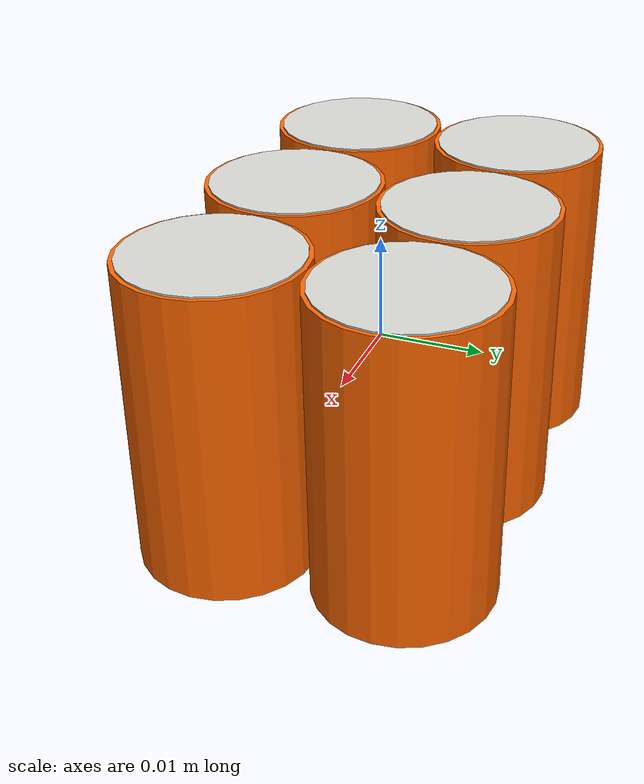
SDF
<?xml version="1.0"?>
<sdf version="1.8">
  <model name="fanta_6pack">
    <static>false</static>
    <link name="link">
      <inertial>
        <mass>0.2</mass>
        <inertia>
          <ixx>0.000032</ixx>
          <iyy>0.000056</iyy>
          <izz>0.000060</izz>
          <ixy>0</ixy>
          <ixz>0</ixz>
          <iyz>0</iyz>
        </inertia>
      </inertial>

      <!-- 캔 본체 6개 (오렌지) -->
      <visual name="can_body_1">
        <pose>-0.0167 -0.00835 0 0 0 0</pose>
        <geometry>
          <cylinder>
            <radius>0.0083</radius>
            <length>0.029</length>
          </cylinder>
        </geometry>
        <material>
          <ambient>1.0 0.4 0.0 1</ambient>
          <diffuse>1.0 0.4 0.0 1</diffuse>
          <specular>0.2 0.2 0.2 1</specular>
        </material>
      </visual>

      <visual name="can_body_2">
        <pose>0.0 -0.00835 0 0 0 0</pose>
        <geometry>
          <cylinder>
            <radius>0.0083</radius>
            <length>0.029</length>
          </cylinder>
        </geometry>
        <material>
          <ambient>1.0 0.4 0.0 1</ambient>
          <diffuse>1.0 0.4 0.0 1</diffuse>
          <specular>0.2 0.2 0.2 1</specular>
        </material>
      </visual>

      <visual name="can_body_3">
        <pose>0.0167 -0.00835 0 0 0 0</pose>
        <geometry>
          <cylinder>
            <radius>0.0083</radius>
            <length>0.029</length>
          </cylinder>
        </geometry>
        <material>
          <ambient>1.0 0.4 0.0 1</ambient>
          <diffuse>1.0 0.4 0.0 1</diffuse>
          <specular>0.2 0.2 0.2 1</specular>
        </material>
      </visual>

      <visual name="can_body_4">
        <pose>-0.0167 0.00835 0 0 0 0</pose>
        <geometry>
          <cylinder>
            <radius>0.0083</radius>
            <length>0.029</length>
          </cylinder>
        </geometry>
        <material>
          <ambient>1.0 0.4 0.0 1</ambient>
          <diffuse>1.0 0.4 0.0 1</diffuse>
          <specular>0.2 0.2 0.2 1</specular>
        </material>
      </visual>

      <visual name="can_body_5">
        <pose>0.0 0.00835 0 0 0 0</pose>
        <geometry>
          <cylinder>
            <radius>0.0083</radius>
            <length>0.029</length>
          </cylinder>
        </geometry>
        <material>
          <ambient>1.0 0.4 0.0 1</ambient>
          <diffuse>1.0 0.4 0.0 1</diffuse>
          <specular>0.2 0.2 0.2 1</specular>
        </material>
      </visual>

      <visual name="can_body_6">
        <pose>0.0167 0.00835 0 0 0 0</pose>
        <geometry>
          <cylinder>
            <radius>0.0083</radius>
            <length>0.029</length>
          </cylinder>
        </geometry>
        <material>
          <ambient>1.0 0.4 0.0 1</ambient>
          <diffuse>1.0 0.4 0.0 1</diffuse>
          <specular>0.2 0.2 0.2 1</specular>
        </material>
      </visual>

      <!-- 캔 상단 알루미늄 디스크 6개 (실버, pop-top 표현) -->
      <visual name="can_top_1">
        <pose>-0.0167 -0.00835 0.01425 0 0 0</pose>
        <geometry>
          <cylinder>
            <radius>0.0079</radius>
            <length>0.0008</length>
          </cylinder>
        </geometry>
        <material>
          <ambient>0.82 0.82 0.80 1</ambient>
          <diffuse>0.85 0.85 0.83 1</diffuse>
          <specular>0.6 0.6 0.6 1</specular>
        </material>
      </visual>

      <visual name="can_top_2">
        <pose>0.0 -0.00835 0.01425 0 0 0</pose>
        <geometry>
          <cylinder>
            <radius>0.0079</radius>
            <length>0.0008</length>
          </cylinder>
        </geometry>
        <material>
          <ambient>0.82 0.82 0.80 1</ambient>
          <diffuse>0.85 0.85 0.83 1</diffuse>
          <specular>0.6 0.6 0.6 1</specular>
        </material>
      </visual>

      <visual name="can_top_3">
        <pose>0.0167 -0.00835 0.01425 0 0 0</pose>
        <geometry>
          <cylinder>
            <radius>0.0079</radius>
            <length>0.0008</length>
          </cylinder>
        </geometry>
        <material>
          <ambient>0.82 0.82 0.80 1</ambient>
          <diffuse>0.85 0.85 0.83 1</diffuse>
          <specular>0.6 0.6 0.6 1</specular>
        </material>
      </visual>

      <visual name="can_top_4">
        <pose>-0.0167 0.00835 0.01425 0 0 0</pose>
        <geometry>
          <cylinder>
            <radius>0.0079</radius>
            <length>0.0008</length>
          </cylinder>
        </geometry>
        <material>
          <ambient>0.82 0.82 0.80 1</ambient>
          <diffuse>0.85 0.85 0.83 1</diffuse>
          <specular>0.6 0.6 0.6 1</specular>
        </material>
      </visual>

      <visual name="can_top_5">
        <pose>0.0 0.00835 0.01425 0 0 0</pose>
        <geometry>
          <cylinder>
            <radius>0.0079</radius>
            <length>0.0008</length>
          </cylinder>
        </geometry>
        <material>
          <ambient>0.82 0.82 0.80 1</ambient>
          <diffuse>0.85 0.85 0.83 1</diffuse>
          <specular>0.6 0.6 0.6 1</specular>
        </material>
      </visual>

      <visual name="can_top_6">
        <pose>0.0167 0.00835 0.01425 0 0 0</pose>
        <geometry>
          <cylinder>
            <radius>0.0079</radius>
            <length>0.0008</length>
          </cylinder>
        </geometry>
        <material>
          <ambient>0.82 0.82 0.80 1</ambient>
          <diffuse>0.85 0.85 0.83 1</diffuse>
          <specular>0.6 0.6 0.6 1</specular>
        </material>
      </visual>

      <!-- 외접 충돌 박스 (캔 묶음 전체 bounding box) -->
      <collision name="collision">
        <geometry>
          <box>
            <size>0.050 0.0334 0.029</size>
          </box>
        </geometry>
        <surface>
          <friction>
            <ode>
              <mu>0.6</mu>
              <mu2>0.6</mu2>
            </ode>
          </friction>
        </surface>
      </collision>
    </link>
  </model>
</sdf>
